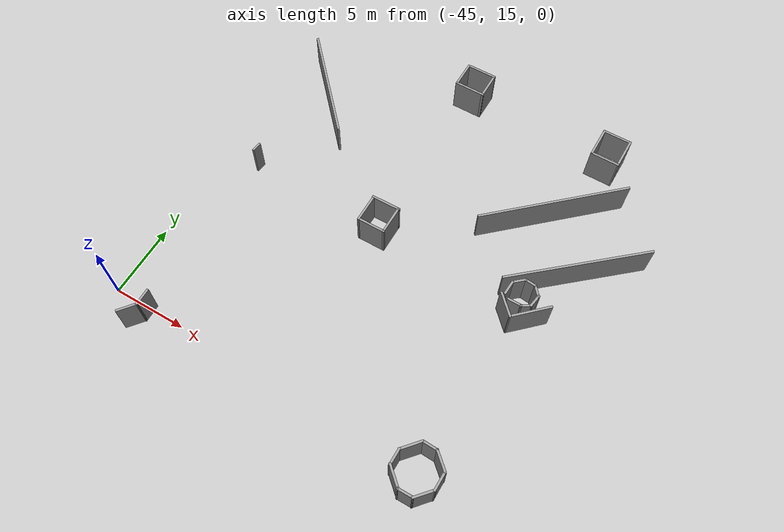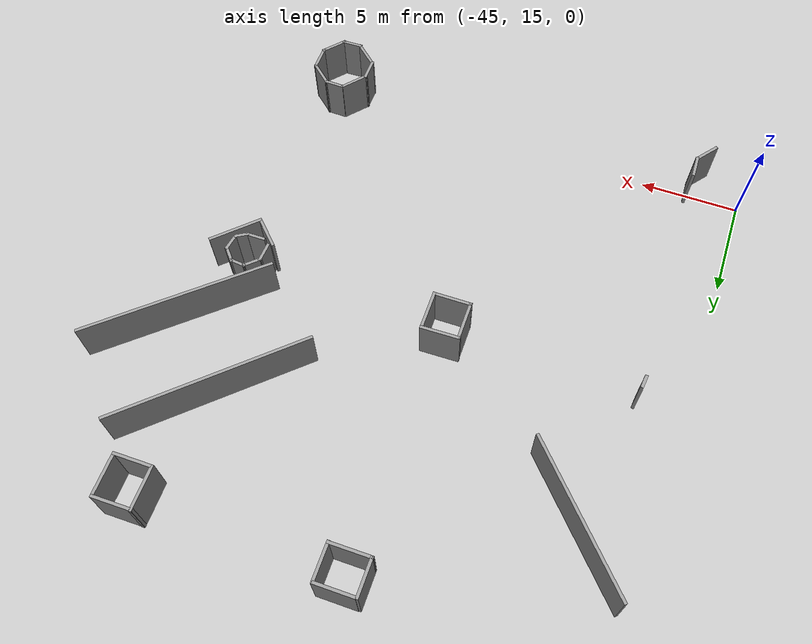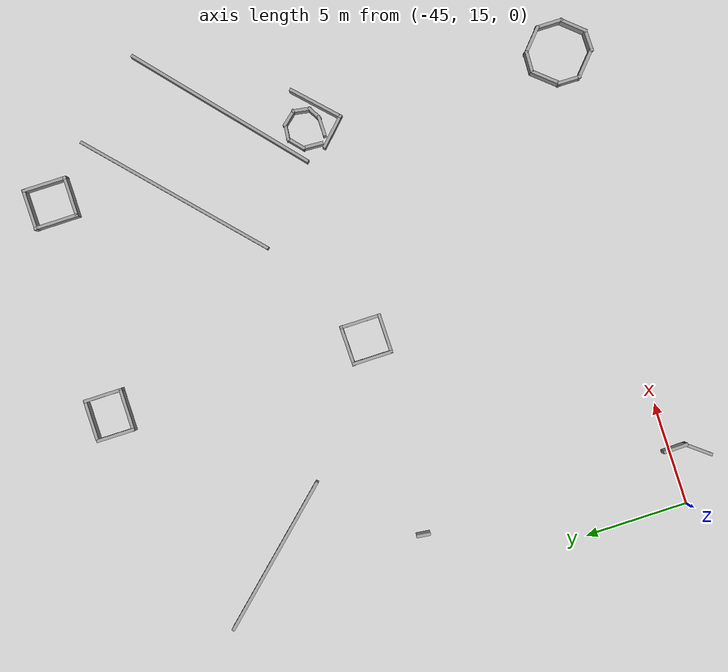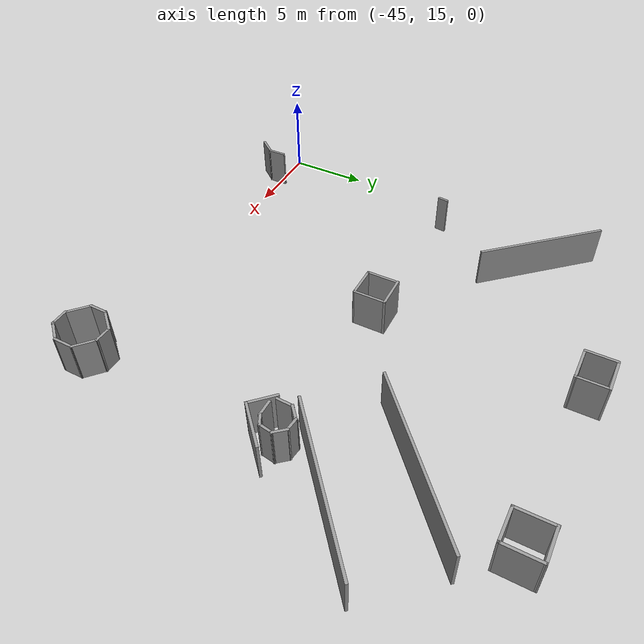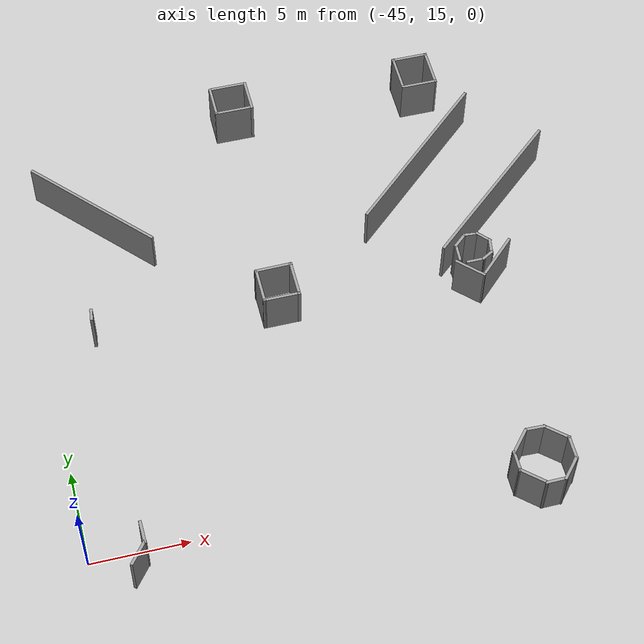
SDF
<sdf version="1.6">
 <model name="mall_new_reduce_size">
  <pose>-6.80917 7.5529 0 0 -0 0</pose>
  <link name="Wall_109">
   <collision name="Wall_109_Collision">
    <geometry><box><size>0.676427 0.15 2.5</size></box></geometry>
    <pose>0 0 1.25 0 -0 0</pose>
   </collision>
   <visual name="Wall_109_Visual">
    <pose>0 0 1.25 0 -0 0</pose>
    <geometry><box><size>0.676427 0.15 2.5</size></box></geometry>
    <material>
     <script><uri>file://media/materials/scripts/gazebo.material</uri><name>Gazebo/Grey</name></script>
     <ambient>1 1 1 1</ambient>
    </material>
    <meta><layer>0</layer></meta>
   </visual>
   <pose>-35.6455 19.8364 0 0 -0 -1.68757</pose>
  </link>
  <link name="Wall_120">
   <collision name="Wall_120_Collision">
    <geometry><box><size>2 0.15 2.5</size></box></geometry>
    <pose>0 0 1.25 0 -0 0</pose>
   </collision>
   <visual name="Wall_120_Visual">
    <pose>0 0 1.25 0 -0 0</pose>
    <geometry><box><size>2 0.15 2.5</size></box></geometry>
    <material>
     <script><uri>file://media/materials/scripts/gazebo.material</uri><name>Gazebo/Grey</name></script>
     <ambient>1 1 1 1</ambient>
    </material>
    <meta><layer>0</layer></meta>
   </visual>
   <pose>-26.9558 19.541 0 0 -0 -1.5708</pose>
  </link>
  <link name="Wall_121">
   <collision name="Wall_121_Collision">
    <geometry><box><size>1.9668 0.15 2.5</size></box></geometry>
    <pose>0 0 1.25 0 -0 0</pose>
   </collision>
   <visual name="Wall_121_Visual">
    <pose>0 0 1.25 0 -0 0</pose>
    <geometry><box><size>1.9668 0.15 2.5</size></box></geometry>
    <material>
     <script><uri>file://media/materials/scripts/gazebo.material</uri><name>Gazebo/Grey</name></script>
     <ambient>1 1 1 1</ambient>
    </material>
    <meta><layer>0</layer></meta>
   </visual>
   <pose>-26.0474 18.619 0 0 -0 0.003382</pose>
  </link>
  <link name="Wall_122">
   <collision name="Wall_122_Collision">
    <geometry><box><size>2.02653 0.15 2.5</size></box></geometry>
    <pose>0 0 1.25 0 -0 0</pose>
   </collision>
   <visual name="Wall_122_Visual">
    <pose>0 0 1.25 0 -0 0</pose>
    <geometry><box><size>2.02653 0.15 2.5</size></box></geometry>
    <material>
     <script><uri>file://media/materials/scripts/gazebo.material</uri><name>Gazebo/Grey</name></script>
     <ambient>1 1 1 1</ambient>
    </material>
    <meta><layer>0</layer></meta>
   </visual>
   <pose>-25.1383 19.554 0 0 -0 1.57003</pose>
  </link>
  <link name="Wall_123">
   <collision name="Wall_123_Collision">
    <geometry><box><size>1.99983 0.15 2.5</size></box></geometry>
    <pose>0 0 1.25 0 -0 0</pose>
   </collision>
   <visual name="Wall_123_Visual">
    <pose>0 0 1.25 0 -0 0</pose>
    <geometry><box><size>1.99983 0.15 2.5</size></box></geometry>
    <material>
     <script><uri>file://media/materials/scripts/gazebo.material</uri><name>Gazebo/Grey</name></script>
     <ambient>1 1 1 1</ambient>
    </material>
    <meta><layer>0</layer></meta>
   </visual>
   <pose>-26.056 20.4954 0 0 -0 -3.12426</pose>
  </link>
  <link name="Wall_23">
   <collision name="Wall_23_Collision">
    <geometry><box><size>8.04183 0.15 2.5</size></box></geometry>
    <pose>0 0 1.25 0 -0 0</pose>
   </collision>
   <visual name="Wall_23_Visual">
    <pose>0 0 1.25 0 -0 0</pose>
    <geometry><box><size>8.04183 0.15 2.5</size></box></geometry>
    <material>
     <script><uri>file://media/materials/scripts/gazebo.material</uri><name>Gazebo/Grey</name></script>
     <ambient>1 1 1 1</ambient>
    </material>
    <meta><layer>0</layer></meta>
   </visual>
   <pose>-34.4403 26.7968 0 0 -0 -0.828664</pose>
  </link>
  <link name="Wall_330">
   <collision name="Wall_330_Collision">
    <geometry><box><size>1.01977 0.15 2.5</size></box></geometry>
    <pose>0 0 1.25 0 -0 0</pose>
   </collision>
   <visual name="Wall_330_Visual">
    <pose>0 0 1.25 0 -0 0</pose>
    <geometry><box><size>1.01977 0.15 2.5</size></box></geometry>
    <material>
     <script><uri>file://media/materials/scripts/gazebo.material</uri><name>Gazebo/Grey</name></script>
     <ambient>1 1 1 1</ambient>
    </material>
    <meta><layer>0</layer></meta>
   </visual>
   <pose>-15.936 8.2086 0 0 -0 -0.033263</pose>
  </link>
  <link name="Wall_331">
   <collision name="Wall_331_Collision">
    <geometry><box><size>1.45443 0.15 2.5</size></box></geometry>
    <pose>0 0 1.25 0 -0 0</pose>
   </collision>
   <visual name="Wall_331_Visual">
    <pose>0 0 1.25 0 -0 0</pose>
    <geometry><box><size>1.45443 0.15 2.5</size></box></geometry>
    <material>
     <script><uri>file://media/materials/scripts/gazebo.material</uri><name>Gazebo/Grey</name></script>
     <ambient>1 1 1 1</ambient>
    </material>
    <meta><layer>0</layer></meta>
   </visual>
   <pose>-15.0144 7.76987 0 0 -0 -0.727873</pose>
  </link>
  <link name="Wall_332">
   <collision name="Wall_332_Collision">
    <geometry><box><size>1.29894 0.15 2.5</size></box></geometry>
    <pose>0 0 1.25 0 -0 0</pose>
   </collision>
   <visual name="Wall_332_Visual">
    <pose>0 0 1.25 0 -0 0</pose>
    <geometry><box><size>1.29894 0.15 2.5</size></box></geometry>
    <material>
     <script><uri>file://media/materials/scripts/gazebo.material</uri><name>Gazebo/Grey</name></script>
     <ambient>1 1 1 1</ambient>
    </material>
    <meta><layer>0</layer></meta>
   </visual>
   <pose>-14.5323 6.75187 0 0 -0 -1.57919</pose>
  </link>
  <link name="Wall_333">
   <collision name="Wall_333_Collision">
    <geometry><box><size>1.40407 0.15 2.5</size></box></geometry>
    <pose>0 0 1.25 0 -0 0</pose>
   </collision>
   <visual name="Wall_333_Visual">
    <pose>0 0 1.25 0 -0 0</pose>
    <geometry><box><size>1.40407 0.15 2.5</size></box></geometry>
    <material>
     <script><uri>file://media/materials/scripts/gazebo.material</uri><name>Gazebo/Grey</name></script>
     <ambient>1 1 1 1</ambient>
    </material>
    <meta><layer>0</layer></meta>
   </visual>
   <pose>-14.9612 5.70636 0 0 -0 -2.29237</pose>
  </link>
  <link name="Wall_334">
   <collision name="Wall_334_Collision">
    <geometry><box><size>1.10611 0.15 2.5</size></box></geometry>
    <pose>0 0 1.25 0 -0 0</pose>
   </collision>
   <visual name="Wall_334_Visual">
    <pose>0 0 1.25 0 -0 0</pose>
    <geometry><box><size>1.10611 0.15 2.5</size></box></geometry>
    <material>
     <script><uri>file://media/materials/scripts/gazebo.material</uri><name>Gazebo/Grey</name></script>
     <ambient>1 1 1 1</ambient>
    </material>
    <meta><layer>0</layer></meta>
   </visual>
   <pose>-15.8537 5.24013 0 0 -0 -3.13151</pose>
  </link>
  <link name="Wall_335">
   <collision name="Wall_335_Collision">
    <geometry><box><size>1.56516 0.15 2.5</size></box></geometry>
    <pose>0 0 1.25 0 -0 0</pose>
   </collision>
   <visual name="Wall_335_Visual">
    <pose>0 0 1.25 0 -0 0</pose>
    <geometry><box><size>1.56516 0.15 2.5</size></box></geometry>
    <material>
     <script><uri>file://media/materials/scripts/gazebo.material</uri><name>Gazebo/Grey</name></script>
     <ambient>1 1 1 1</ambient>
    </material>
    <meta><layer>0</layer></meta>
   </visual>
   <pose>-16.8295 5.70779 0 0 -0 2.41041</pose>
  </link>
  <link name="Wall_336">
   <collision name="Wall_336_Collision">
    <geometry><box><size>1.15225 0.15 2.5</size></box></geometry>
    <pose>0 0 1.25 0 -0 0</pose>
   </collision>
   <visual name="Wall_336_Visual">
    <pose>0 0 1.25 0 -0 0</pose>
    <geometry><box><size>1.15225 0.15 2.5</size></box></geometry>
    <material>
     <script><uri>file://media/materials/scripts/gazebo.material</uri><name>Gazebo/Grey</name></script>
     <ambient>1 1 1 1</ambient>
    </material>
    <meta><layer>0</layer></meta>
   </visual>
   <pose>-17.3514 6.67174 0 0 -0 1.56118</pose>
  </link>
  <link name="Wall_337">
   <collision name="Wall_337_Collision">
    <geometry><box><size>1.51537 0.15 2.5</size></box></geometry>
    <pose>0 0 1.25 0 -0 0</pose>
   </collision>
   <visual name="Wall_337_Visual">
    <pose>0 0 1.25 0 -0 0</pose>
    <geometry><box><size>1.51537 0.15 2.5</size></box></geometry>
    <material>
     <script><uri>file://media/materials/scripts/gazebo.material</uri><name>Gazebo/Grey</name></script>
     <ambient>1 1 1 1</ambient>
    </material>
    <meta><layer>0</layer></meta>
   </visual>
   <pose>-16.9005 7.68 0 0 -0 0.858721</pose>
  </link>
  <link name="Wall_38">
   <collision name="Wall_38_Collision">
    <geometry><box><size>1.87759 0.15 2.5</size></box></geometry>
    <pose>0 0 1.25 0 -0 0</pose>
   </collision>
   <visual name="Wall_38_Visual">
    <pose>0 0 1.25 0 -0 0</pose>
    <geometry><box><size>1.87759 0.15 2.5</size></box></geometry>
    <material>
     <script><uri>file://media/materials/scripts/gazebo.material</uri><name>Gazebo/Grey</name></script>
     <ambient>1 1 1 1</ambient>
    </material>
    <meta><layer>0</layer></meta>
   </visual>
   <pose>-26.693 32.1923 0 0 -0 -1.57586</pose>
  </link>
  <link name="Wall_383">
   <collision name="Wall_383_Collision">
    <geometry><box><size>1.20072 0.15 2.5</size></box></geometry>
    <pose>0 0 1.25 0 -0 0</pose>
   </collision>
   <visual name="Wall_383_Visual">
    <pose>0 0 1.25 0 -0 0</pose>
    <geometry><box><size>1.20072 0.15 2.5</size></box></geometry>
    <material>
     <script><uri>file://media/materials/scripts/gazebo.material</uri><name>Gazebo/Grey</name></script>
     <ambient>1 1 1 1</ambient>
    </material>
    <meta><layer>0</layer></meta>
   </visual>
   <pose>-35.4271 7.25246 0 0 -0 -1.54957</pose>
  </link>
  <link name="Wall_384">
   <collision name="Wall_384_Collision">
    <geometry><box><size>1.37998 0.15 2.5</size></box></geometry>
    <pose>0 0 1.25 0 -0 0</pose>
   </collision>
   <visual name="Wall_384_Visual">
    <pose>0 0 1.25 0 -0 0</pose>
    <geometry><box><size>1.37998 0.15 2.5</size></box></geometry>
    <material>
     <script><uri>file://media/materials/scripts/gazebo.material</uri><name>Gazebo/Grey</name></script>
     <ambient>1 1 1 1</ambient>
    </material>
    <meta><layer>0</layer></meta>
   </visual>
   <pose>-35.8104 6.24615 0 0 -0 -2.24365</pose>
  </link>
  <link name="Wall_40">
   <collision name="Wall_40_Collision">
    <geometry><box><size>2.12677 0.15 2.5</size></box></geometry>
    <pose>0 0 1.25 0 -0 0</pose>
   </collision>
   <visual name="Wall_40_Visual">
    <pose>0 0 1.25 0 -0 0</pose>
    <geometry><box><size>2.12677 0.15 2.5</size></box></geometry>
    <material>
     <script><uri>file://media/materials/scripts/gazebo.material</uri><name>Gazebo/Grey</name></script>
     <ambient>1 1 1 1</ambient>
    </material>
    <meta><layer>0</layer></meta>
   </visual>
   <pose>-25.709 31.3193 0 0 -0 -0.000501</pose>
  </link>
  <link name="Wall_42">
   <collision name="Wall_42_Collision">
    <geometry><box><size>1.90642 0.15 2.5</size></box></geometry>
    <pose>0 0 1.25 0 -0 0</pose>
   </collision>
   <visual name="Wall_42_Visual">
    <pose>0 0 1.25 0 -0 0</pose>
    <geometry><box><size>1.90642 0.15 2.5</size></box></geometry>
    <material>
     <script><uri>file://media/materials/scripts/gazebo.material</uri><name>Gazebo/Grey</name></script>
     <ambient>1 1 1 1</ambient>
    </material>
    <meta><layer>0</layer></meta>
   </visual>
   <pose>-24.7208 32.1883 0 0 -0 1.57103</pose>
  </link>
  <link name="Wall_43">
   <collision name="Wall_43_Collision">
    <geometry><box><size>2 0.15 2.5</size></box></geometry>
    <pose>0 0 1.25 0 -0 0</pose>
   </collision>
   <visual name="Wall_43_Visual">
    <pose>0 0 1.25 0 -0 0</pose>
    <geometry><box><size>2 0.15 2.5</size></box></geometry>
    <material>
     <script><uri>file://media/materials/scripts/gazebo.material</uri><name>Gazebo/Grey</name></script>
     <ambient>1 1 1 1</ambient>
    </material>
    <meta><layer>0</layer></meta>
   </visual>
   <pose>-25.646 33.0752 0 0 -0 3.14159</pose>
  </link>
  <link name="Wall_45">
   <collision name="Wall_45_Collision">
    <geometry><box><size>2.19239 0.15 2.5</size></box></geometry>
    <pose>0 0 1.25 0 -0 0</pose>
   </collision>
   <visual name="Wall_45_Visual">
    <pose>0 0 1.25 0 -0 0</pose>
    <geometry><box><size>2.19239 0.15 2.5</size></box></geometry>
    <material>
     <script><uri>file://media/materials/scripts/gazebo.material</uri><name>Gazebo/Grey</name></script>
     <ambient>1 1 1 1</ambient>
    </material>
    <meta><layer>0</layer></meta>
   </visual>
   <pose>-16.247 31.7587 0 0 -0 -1.5708</pose>
  </link>
  <link name="Wall_46">
   <collision name="Wall_46_Collision">
    <geometry><box><size>2 0.15 2.5</size></box></geometry>
    <pose>0 0 1.25 0 -0 0</pose>
   </collision>
   <visual name="Wall_46_Visual">
    <pose>0 0 1.25 0 -0 0</pose>
    <geometry><box><size>2 0.15 2.5</size></box></geometry>
    <material>
     <script><uri>file://media/materials/scripts/gazebo.material</uri><name>Gazebo/Grey</name></script>
     <ambient>1 1 1 1</ambient>
    </material>
    <meta><layer>0</layer></meta>
   </visual>
   <pose>-15.322 30.7375 0 0 -0 0</pose>
  </link>
  <link name="Wall_47">
   <collision name="Wall_47_Collision">
    <geometry><box><size>2.17492 0.15 2.5</size></box></geometry>
    <pose>0 0 1.25 0 -0 0</pose>
   </collision>
   <visual name="Wall_47_Visual">
    <pose>0 0 1.25 0 -0 0</pose>
    <geometry><box><size>2.17492 0.15 2.5</size></box></geometry>
    <material>
     <script><uri>file://media/materials/scripts/gazebo.material</uri><name>Gazebo/Grey</name></script>
     <ambient>1 1 1 1</ambient>
    </material>
    <meta><layer>0</layer></meta>
   </visual>
   <pose>-14.3927 31.7499 0 0 -0 1.56648</pose>
  </link>
  <link name="Wall_48">
   <collision name="Wall_48_Collision">
    <geometry><box><size>2.0172 0.15 2.5</size></box></geometry>
    <pose>0 0 1.25 0 -0 0</pose>
   </collision>
   <visual name="Wall_48_Visual">
    <pose>0 0 1.25 0 -0 0</pose>
    <geometry><box><size>2.0172 0.15 2.5</size></box></geometry>
    <material>
     <script><uri>file://media/materials/scripts/gazebo.material</uri><name>Gazebo/Grey</name></script>
     <ambient>1 1 1 1</ambient>
    </material>
    <meta><layer>0</layer></meta>
   </visual>
   <pose>-15.3219 32.7668 0 0 -0 -3.13691</pose>
  </link>
  <link name="Wall_57">
   <collision name="Wall_57_Collision">
    <geometry><box><size>10.1653 0.15 2.5</size></box></geometry>
    <pose>0 0 1.25 0 -0 0</pose>
   </collision>
   <visual name="Wall_57_Visual">
    <pose>0 0 1.25 0 -0 0</pose>
    <geometry><box><size>10.1653 0.15 2.5</size></box></geometry>
    <material>
     <script><uri>file://media/materials/scripts/gazebo.material</uri><name>Gazebo/Grey</name></script>
     <ambient>1 1 1 1</ambient>
    </material>
    <meta><layer>0</layer></meta>
   </visual>
   <pose>-16.7712 26.0648 0 0 -0 0.74156</pose>
  </link>
  <link name="Wall_59">
   <collision name="Wall_59_Collision">
    <geometry><box><size>9.7239 0.15 2.5</size></box></geometry>
    <pose>0 0 1.25 0 -0 0</pose>
   </collision>
   <visual name="Wall_59_Visual">
    <pose>0 0 1.25 0 -0 0</pose>
    <geometry><box><size>9.7239 0.15 2.5</size></box></geometry>
    <material>
     <script><uri>file://media/materials/scripts/gazebo.material</uri><name>Gazebo/Grey</name></script>
     <ambient>1 1 1 1</ambient>
    </material>
    <meta><layer>0</layer></meta>
   </visual>
   <pose>-13.5451 22.7671 0 0 -0 -2.42416</pose>
  </link>
  <link name="Wall_62">
   <collision name="Wall_62_Collision">
    <geometry><box><size>1.75 0.15 2.5</size></box></geometry>
    <pose>0 0 1.25 0 -0 0</pose>
   </collision>
   <visual name="Wall_62_Visual">
    <pose>0 0 1.25 0 -0 0</pose>
    <geometry><box><size>1.75 0.15 2.5</size></box></geometry>
    <material>
     <script><uri>file://media/materials/scripts/gazebo.material</uri><name>Gazebo/Grey</name></script>
     <ambient>1 1 1 1</ambient>
    </material>
    <meta><layer>0</layer></meta>
   </visual>
   <pose>-16.2089 18.0457 0 0 -0 -0.785398</pose>
  </link>
  <link name="Wall_63">
   <collision name="Wall_63_Collision">
    <geometry><box><size>2.76682 0.15 2.5</size></box></geometry>
    <pose>0 0 1.25 0 -0 0</pose>
   </collision>
   <visual name="Wall_63_Visual">
    <pose>0 0 1.25 0 -0 0</pose>
    <geometry><box><size>2.76682 0.15 2.5</size></box></geometry>
    <material>
     <script><uri>file://media/materials/scripts/gazebo.material</uri><name>Gazebo/Grey</name></script>
     <ambient>1 1 1 1</ambient>
    </material>
    <meta><layer>0</layer></meta>
   </visual>
   <pose>-14.7009 18.3877 0 0 -0 0.766646</pose>
  </link>
  <link name="Wall_66">
   <collision name="Wall_66_Collision">
    <geometry><box><size>1 0.15 2.5</size></box></geometry>
    <pose>0 0 1.25 0 -0 0</pose>
   </collision>
   <visual name="Wall_66_Visual">
    <pose>0 0 1.25 0 -0 0</pose>
    <geometry><box><size>1 0.15 2.5</size></box></geometry>
    <material>
     <script><uri>file://media/materials/scripts/gazebo.material</uri><name>Gazebo/Grey</name></script>
     <ambient>1 1 1 1</ambient>
    </material>
    <meta><layer>0</layer></meta>
   </visual>
   <pose>-15.806 18.4495 0 0 -0 0</pose>
  </link>
  <link name="Wall_67">
   <collision name="Wall_67_Collision">
    <geometry><box><size>0.75 0.15 2.5</size></box></geometry>
    <pose>0 0 1.25 0 -0 0</pose>
   </collision>
   <visual name="Wall_67_Visual">
    <pose>0 0 1.25 0 -0 0</pose>
    <geometry><box><size>0.75 0.15 2.5</size></box></geometry>
    <material>
     <script><uri>file://media/materials/scripts/gazebo.material</uri><name>Gazebo/Grey</name></script>
     <ambient>1 1 1 1</ambient>
    </material>
    <meta><layer>0</layer></meta>
   </visual>
   <pose>-15.1212 18.5995 0 0 -0 0.523599</pose>
  </link>
  <link name="Wall_68">
   <collision name="Wall_68_Collision">
    <geometry><box><size>0.923783 0.15 2.5</size></box></geometry>
    <pose>0 0 1.25 0 -0 0</pose>
   </collision>
   <visual name="Wall_68_Visual">
    <pose>0 0 1.25 0 -0 0</pose>
    <geometry><box><size>0.923783 0.15 2.5</size></box></geometry>
    <material>
     <script><uri>file://media/materials/scripts/gazebo.material</uri><name>Gazebo/Grey</name></script>
     <ambient>1 1 1 1</ambient>
    </material>
    <meta><layer>0</layer></meta>
   </visual>
   <pose>-14.7977 19.1311 0 0 -0 1.4053</pose>
  </link>
  <link name="Wall_69">
   <collision name="Wall_69_Collision">
    <geometry><box><size>0.920137 0.15 2.5</size></box></geometry>
    <pose>0 0 1.25 0 -0 0</pose>
   </collision>
   <visual name="Wall_69_Visual">
    <pose>0 0 1.25 0 -0 0</pose>
    <geometry><box><size>0.920137 0.15 2.5</size></box></geometry>
    <material>
     <script><uri>file://media/materials/scripts/gazebo.material</uri><name>Gazebo/Grey</name></script>
     <ambient>1 1 1 1</ambient>
    </material>
    <meta><layer>0</layer></meta>
   </visual>
   <pose>-14.9845 19.7936 0 0 -0 2.27931</pose>
  </link>
  <link name="Wall_70">
   <collision name="Wall_70_Collision">
    <geometry><box><size>0.82206 0.15 2.5</size></box></geometry>
    <pose>0 0 1.25 0 -0 0</pose>
   </collision>
   <visual name="Wall_70_Visual">
    <pose>0 0 1.25 0 -0 0</pose>
    <geometry><box><size>0.82206 0.15 2.5</size></box></geometry>
    <material>
     <script><uri>file://media/materials/scripts/gazebo.material</uri><name>Gazebo/Grey</name></script>
     <ambient>1 1 1 1</ambient>
    </material>
    <meta><layer>0</layer></meta>
   </visual>
   <pose>-15.581 20.1082 0 0 -0 3.04075</pose>
  </link>
  <link name="Wall_71">
   <collision name="Wall_71_Collision">
    <geometry><box><size>0.984159 0.15 2.5</size></box></geometry>
    <pose>0 0 1.25 0 -0 0</pose>
   </collision>
   <visual name="Wall_71_Visual">
    <pose>0 0 1.25 0 -0 0</pose>
    <geometry><box><size>0.984159 0.15 2.5</size></box></geometry>
    <material>
     <script><uri>file://media/materials/scripts/gazebo.material</uri><name>Gazebo/Grey</name></script>
     <ambient>1 1 1 1</ambient>
    </material>
    <meta><layer>0</layer></meta>
   </visual>
   <pose>-16.2277 19.8542 0 0 -0 -2.41751</pose>
  </link>
  <link name="Wall_72">
   <collision name="Wall_72_Collision">
    <geometry><box><size>1.02754 0.15 2.5</size></box></geometry>
    <pose>0 0 1.25 0 -0 0</pose>
   </collision>
   <visual name="Wall_72_Visual">
    <pose>0 0 1.25 0 -0 0</pose>
    <geometry><box><size>1.02754 0.15 2.5</size></box></geometry>
    <material>
     <script><uri>file://media/materials/scripts/gazebo.material</uri><name>Gazebo/Grey</name></script>
     <ambient>1 1 1 1</ambient>
    </material>
    <meta><layer>0</layer></meta>
   </visual>
   <pose>-16.5528 19.1394 0 0 -0 -1.62581</pose>
  </link>
  <static>1</static>
 </model>
</sdf>
